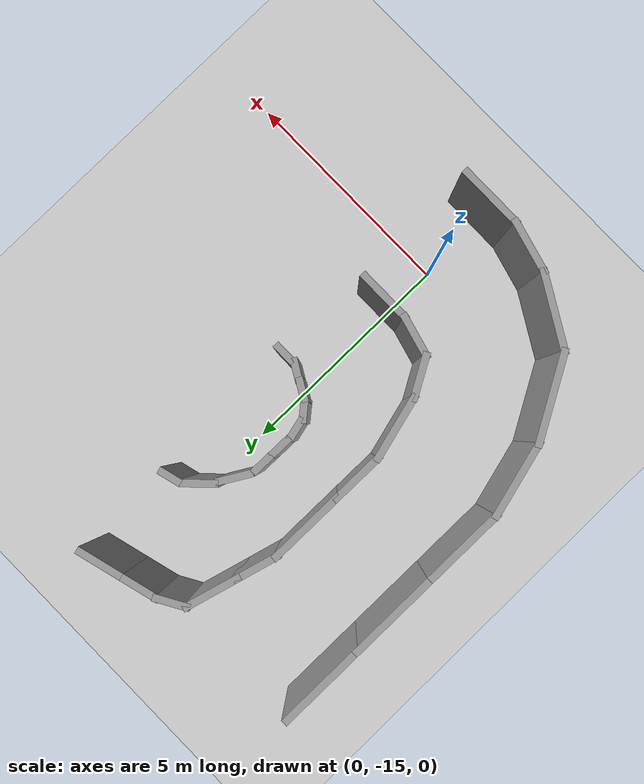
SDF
<sdf version="1.6">
 <world name="default">
  <model name="ground_plane">
   <static>1</static>
   <link name="link">
    <collision name="collision">
     <geometry><plane><normal>0 0 1</normal><size>100 100</size></plane></geometry>
     <surface><friction><ode><mu>100</mu><mu2>50</mu2></ode></friction></surface>
    </collision>
    <visual name="visual">
     <cast_shadows>0</cast_shadows>
     <geometry><plane><normal>0 0 1</normal><size>100 100</size></plane></geometry>
     <material>
      <script><uri>file://media/materials/scripts/gazebo.material</uri><name>Gazebo/Grey</name></script>
     </material>
    </visual>
   </link>
  </model>
  <model name="c-Snail_update_clone">
   <link name="Wall_29">
    <pose>10.2991 1.24294 0 0 -0 1.5708</pose>
    <visual name="Wall_29_Visual">
     <pose>0 0 1.25 0 -0 0</pose>
     <geometry><box><size>1.5 0.15 2.5</size></box></geometry>
     <material>
      <script><uri>file://media/materials/scripts/gazebo.material</uri><name>Gazebo/Grey</name></script>
      <ambient>1 1 1 1</ambient>
     </material>
     <meta><layer>0</layer></meta>
    </visual>
    <collision name="Wall_29_Collision">
     <pose>0 0 1.25 0 -0 0</pose>
     <geometry><box><size>1.5 0.15 2.5</size></box></geometry>
     <surface>
      <friction>
       <ode><mu>1</mu><mu2>1</mu2><fdir1>0 0 0</fdir1><slip1>0</slip1><slip2>0</slip2></ode>
       <torsional>
        <coefficient>1</coefficient>
        <patch_radius>0</patch_radius>
        <surface_radius>0</surface_radius>
        <use_patch_radius>1</use_patch_radius>
        <ode><slip>0</slip></ode>
       </torsional>
      </friction>
      <bounce><restitution_coefficient>0</restitution_coefficient><threshold>1e+06</threshold></bounce>
      <contact>
       <collide_without_contact>0</collide_without_contact>
       <collide_without_contact_bitmask>1</collide_without_contact_bitmask>
       <collide_bitmask>1</collide_bitmask>
       <ode>
        <soft_cfm>0</soft_cfm>
        <soft_erp>0.2</soft_erp>
        <kp>1e+13</kp>
        <kd>1</kd>
        <max_vel>0.01</max_vel>
        <min_depth>0</min_depth>
       </ode>
       <bullet>
        <split_impulse>1</split_impulse>
        <split_impulse_penetration_threshold>-0.01</split_impulse_penetration_threshold>
        <soft_cfm>0</soft_cfm>
        <soft_erp>0.2</soft_erp>
        <kp>1e+13</kp>
        <kd>1</kd>
       </bullet>
      </contact>
     </surface>
    </collision>
   </link>
   <link name="Wall_30">
    <pose>10.1568 2.4492 0 0 -0 1.8326</pose>
    <visual name="Wall_30_Visual">
     <pose>0 0 1.25 0 -0 0</pose>
     <geometry><box><size>1.25 0.15 2.5</size></box></geometry>
     <material>
      <script><uri>file://media/materials/scripts/gazebo.material</uri><name>Gazebo/Grey</name></script>
      <ambient>1 1 1 1</ambient>
     </material>
     <meta><layer>0</layer></meta>
    </visual>
    <collision name="Wall_30_Collision">
     <pose>0 0 1.25 0 -0 0</pose>
     <geometry><box><size>1.25 0.15 2.5</size></box></geometry>
     <surface>
      <friction>
       <ode><mu>1</mu><mu2>1</mu2><fdir1>0 0 0</fdir1><slip1>0</slip1><slip2>0</slip2></ode>
       <torsional>
        <coefficient>1</coefficient>
        <patch_radius>0</patch_radius>
        <surface_radius>0</surface_radius>
        <use_patch_radius>1</use_patch_radius>
        <ode><slip>0</slip></ode>
       </torsional>
      </friction>
      <bounce><restitution_coefficient>0</restitution_coefficient><threshold>1e+06</threshold></bounce>
      <contact>
       <collide_without_contact>0</collide_without_contact>
       <collide_without_contact_bitmask>1</collide_without_contact_bitmask>
       <collide_bitmask>1</collide_bitmask>
       <ode>
        <soft_cfm>0</soft_cfm>
        <soft_erp>0.2</soft_erp>
        <kp>1e+13</kp>
        <kd>1</kd>
        <max_vel>0.01</max_vel>
        <min_depth>0</min_depth>
       </ode>
       <bullet>
        <split_impulse>1</split_impulse>
        <split_impulse_penetration_threshold>-0.01</split_impulse_penetration_threshold>
        <soft_cfm>0</soft_cfm>
        <soft_erp>0.2</soft_erp>
        <kp>1e+13</kp>
        <kd>1</kd>
       </bullet>
      </contact>
     </surface>
    </collision>
   </link>
   <link name="Wall_31">
    <pose>9.61441 3.67328 0 0 -0 2.0944</pose>
    <visual name="Wall_31_Visual">
     <pose>0 0 1.25 0 -0 0</pose>
     <geometry><box><size>1.75 0.15 2.5</size></box></geometry>
     <material>
      <script><uri>file://media/materials/scripts/gazebo.material</uri><name>Gazebo/Grey</name></script>
      <ambient>1 1 1 1</ambient>
     </material>
     <meta><layer>0</layer></meta>
    </visual>
    <collision name="Wall_31_Collision">
     <pose>0 0 1.25 0 -0 0</pose>
     <geometry><box><size>1.75 0.15 2.5</size></box></geometry>
     <surface>
      <friction>
       <ode><mu>1</mu><mu2>1</mu2><fdir1>0 0 0</fdir1><slip1>0</slip1><slip2>0</slip2></ode>
       <torsional>
        <coefficient>1</coefficient>
        <patch_radius>0</patch_radius>
        <surface_radius>0</surface_radius>
        <use_patch_radius>1</use_patch_radius>
        <ode><slip>0</slip></ode>
       </torsional>
      </friction>
      <bounce><restitution_coefficient>0</restitution_coefficient><threshold>1e+06</threshold></bounce>
      <contact>
       <collide_without_contact>0</collide_without_contact>
       <collide_without_contact_bitmask>1</collide_without_contact_bitmask>
       <collide_bitmask>1</collide_bitmask>
       <ode>
        <soft_cfm>0</soft_cfm>
        <soft_erp>0.2</soft_erp>
        <kp>1e+13</kp>
        <kd>1</kd>
        <max_vel>0.01</max_vel>
        <min_depth>0</min_depth>
       </ode>
       <bullet>
        <split_impulse>1</split_impulse>
        <split_impulse_penetration_threshold>-0.01</split_impulse_penetration_threshold>
        <soft_cfm>0</soft_cfm>
        <soft_erp>0.2</soft_erp>
        <kp>1e+13</kp>
        <kd>1</kd>
       </bullet>
      </contact>
     </surface>
    </collision>
   </link>
   <link name="Wall_32">
    <pose>8.41334 4.8286 0 0 -0 2.61799</pose>
    <visual name="Wall_32_Visual">
     <pose>0 0 1.25 0 -0 0</pose>
     <geometry><box><size>2 0.15 2.5</size></box></geometry>
     <material>
      <script><uri>file://media/materials/scripts/gazebo.material</uri><name>Gazebo/Grey</name></script>
      <ambient>1 1 1 1</ambient>
     </material>
     <meta><layer>0</layer></meta>
    </visual>
    <collision name="Wall_32_Collision">
     <pose>0 0 1.25 0 -0 0</pose>
     <geometry><box><size>2 0.15 2.5</size></box></geometry>
     <surface>
      <friction>
       <ode><mu>1</mu><mu2>1</mu2><fdir1>0 0 0</fdir1><slip1>0</slip1><slip2>0</slip2></ode>
       <torsional>
        <coefficient>1</coefficient>
        <patch_radius>0</patch_radius>
        <surface_radius>0</surface_radius>
        <use_patch_radius>1</use_patch_radius>
        <ode><slip>0</slip></ode>
       </torsional>
      </friction>
      <bounce><restitution_coefficient>0</restitution_coefficient><threshold>1e+06</threshold></bounce>
      <contact>
       <collide_without_contact>0</collide_without_contact>
       <collide_without_contact_bitmask>1</collide_without_contact_bitmask>
       <collide_bitmask>1</collide_bitmask>
       <ode>
        <soft_cfm>0</soft_cfm>
        <soft_erp>0.2</soft_erp>
        <kp>1e+13</kp>
        <kd>1</kd>
        <max_vel>0.01</max_vel>
        <min_depth>0</min_depth>
       </ode>
       <bullet>
        <split_impulse>1</split_impulse>
        <split_impulse_penetration_threshold>-0.01</split_impulse_penetration_threshold>
        <soft_cfm>0</soft_cfm>
        <soft_erp>0.2</soft_erp>
        <kp>1e+13</kp>
        <kd>1</kd>
       </bullet>
      </contact>
     </surface>
    </collision>
   </link>
   <link name="Wall_33">
    <pose>6.83952 5.49815 0 0 -0 2.87979</pose>
    <visual name="Wall_33_Visual">
     <pose>0 0 1.25 0 -0 0</pose>
     <geometry><box><size>1.75 0.15 2.5</size></box></geometry>
     <material>
      <script><uri>file://media/materials/scripts/gazebo.material</uri><name>Gazebo/Grey</name></script>
      <ambient>1 1 1 1</ambient>
     </material>
     <meta><layer>0</layer></meta>
    </visual>
    <collision name="Wall_33_Collision">
     <pose>0 0 1.25 0 -0 0</pose>
     <geometry><box><size>1.75 0.15 2.5</size></box></geometry>
     <surface>
      <friction>
       <ode><mu>1</mu><mu2>1</mu2><fdir1>0 0 0</fdir1><slip1>0</slip1><slip2>0</slip2></ode>
       <torsional>
        <coefficient>1</coefficient>
        <patch_radius>0</patch_radius>
        <surface_radius>0</surface_radius>
        <use_patch_radius>1</use_patch_radius>
        <ode><slip>0</slip></ode>
       </torsional>
      </friction>
      <bounce><restitution_coefficient>0</restitution_coefficient><threshold>1e+06</threshold></bounce>
      <contact>
       <collide_without_contact>0</collide_without_contact>
       <collide_without_contact_bitmask>1</collide_without_contact_bitmask>
       <collide_bitmask>1</collide_bitmask>
       <ode>
        <soft_cfm>0</soft_cfm>
        <soft_erp>0.2</soft_erp>
        <kp>1e+13</kp>
        <kd>1</kd>
        <max_vel>0.01</max_vel>
        <min_depth>0</min_depth>
       </ode>
       <bullet>
        <split_impulse>1</split_impulse>
        <split_impulse_penetration_threshold>-0.01</split_impulse_penetration_threshold>
        <soft_cfm>0</soft_cfm>
        <soft_erp>0.2</soft_erp>
        <kp>1e+13</kp>
        <kd>1</kd>
       </bullet>
      </contact>
     </surface>
    </collision>
   </link>
   <link name="Wall_34">
    <pose>5.14178 5.70521 0 0 -0 3.14159</pose>
    <visual name="Wall_34_Visual">
     <pose>0 0 1.25 0 -0 0</pose>
     <geometry><box><size>2 0.15 2.5</size></box></geometry>
     <material>
      <script><uri>file://media/materials/scripts/gazebo.material</uri><name>Gazebo/Grey</name></script>
      <ambient>1 1 1 1</ambient>
     </material>
     <meta><layer>0</layer></meta>
    </visual>
    <collision name="Wall_34_Collision">
     <pose>0 0 1.25 0 -0 0</pose>
     <geometry><box><size>2 0.15 2.5</size></box></geometry>
     <surface>
      <friction>
       <ode><mu>1</mu><mu2>1</mu2><fdir1>0 0 0</fdir1><slip1>0</slip1><slip2>0</slip2></ode>
       <torsional>
        <coefficient>1</coefficient>
        <patch_radius>0</patch_radius>
        <surface_radius>0</surface_radius>
        <use_patch_radius>1</use_patch_radius>
        <ode><slip>0</slip></ode>
       </torsional>
      </friction>
      <bounce><restitution_coefficient>0</restitution_coefficient><threshold>1e+06</threshold></bounce>
      <contact>
       <collide_without_contact>0</collide_without_contact>
       <collide_without_contact_bitmask>1</collide_without_contact_bitmask>
       <collide_bitmask>1</collide_bitmask>
       <ode>
        <soft_cfm>0</soft_cfm>
        <soft_erp>0.2</soft_erp>
        <kp>1e+13</kp>
        <kd>1</kd>
        <max_vel>0.01</max_vel>
        <min_depth>0</min_depth>
       </ode>
       <bullet>
        <split_impulse>1</split_impulse>
        <split_impulse_penetration_threshold>-0.01</split_impulse_penetration_threshold>
        <soft_cfm>0</soft_cfm>
        <soft_erp>0.2</soft_erp>
        <kp>1e+13</kp>
        <kd>1</kd>
       </bullet>
      </contact>
     </surface>
    </collision>
   </link>
   <link name="Wall_35">
    <pose>3.29178 5.70521 0 0 -0 3.14159</pose>
    <visual name="Wall_35_Visual">
     <pose>0 0 1.25 0 -0 0</pose>
     <geometry><box><size>2 0.15 2.5</size></box></geometry>
     <material>
      <script><uri>file://media/materials/scripts/gazebo.material</uri><name>Gazebo/Grey</name></script>
      <ambient>1 1 1 1</ambient>
     </material>
     <meta><layer>0</layer></meta>
    </visual>
    <collision name="Wall_35_Collision">
     <pose>0 0 1.25 0 -0 0</pose>
     <geometry><box><size>2 0.15 2.5</size></box></geometry>
     <surface>
      <friction>
       <ode><mu>1</mu><mu2>1</mu2><fdir1>0 0 0</fdir1><slip1>0</slip1><slip2>0</slip2></ode>
       <torsional>
        <coefficient>1</coefficient>
        <patch_radius>0</patch_radius>
        <surface_radius>0</surface_radius>
        <use_patch_radius>1</use_patch_radius>
        <ode><slip>0</slip></ode>
       </torsional>
      </friction>
      <bounce><restitution_coefficient>0</restitution_coefficient><threshold>1e+06</threshold></bounce>
      <contact>
       <collide_without_contact>0</collide_without_contact>
       <collide_without_contact_bitmask>1</collide_without_contact_bitmask>
       <collide_bitmask>1</collide_bitmask>
       <ode>
        <soft_cfm>0</soft_cfm>
        <soft_erp>0.2</soft_erp>
        <kp>1e+13</kp>
        <kd>1</kd>
        <max_vel>0.01</max_vel>
        <min_depth>0</min_depth>
       </ode>
       <bullet>
        <split_impulse>1</split_impulse>
        <split_impulse_penetration_threshold>-0.01</split_impulse_penetration_threshold>
        <soft_cfm>0</soft_cfm>
        <soft_erp>0.2</soft_erp>
        <kp>1e+13</kp>
        <kd>1</kd>
       </bullet>
      </contact>
     </surface>
    </collision>
   </link>
   <link name="Wall_36">
    <pose>1.44178 5.70521 0 0 -0 3.14159</pose>
    <visual name="Wall_36_Visual">
     <pose>0 0 1.25 0 -0 0</pose>
     <geometry><box><size>2 0.15 2.5</size></box></geometry>
     <material>
      <script><uri>file://media/materials/scripts/gazebo.material</uri><name>Gazebo/Grey</name></script>
      <ambient>1 1 1 1</ambient>
     </material>
     <meta><layer>0</layer></meta>
    </visual>
    <collision name="Wall_36_Collision">
     <pose>0 0 1.25 0 -0 0</pose>
     <geometry><box><size>2 0.15 2.5</size></box></geometry>
     <surface>
      <friction>
       <ode><mu>1</mu><mu2>1</mu2><fdir1>0 0 0</fdir1><slip1>0</slip1><slip2>0</slip2></ode>
       <torsional>
        <coefficient>1</coefficient>
        <patch_radius>0</patch_radius>
        <surface_radius>0</surface_radius>
        <use_patch_radius>1</use_patch_radius>
        <ode><slip>0</slip></ode>
       </torsional>
      </friction>
      <bounce><restitution_coefficient>0</restitution_coefficient><threshold>1e+06</threshold></bounce>
      <contact>
       <collide_without_contact>0</collide_without_contact>
       <collide_without_contact_bitmask>1</collide_without_contact_bitmask>
       <collide_bitmask>1</collide_bitmask>
       <ode>
        <soft_cfm>0</soft_cfm>
        <soft_erp>0.2</soft_erp>
        <kp>1e+13</kp>
        <kd>1</kd>
        <max_vel>0.01</max_vel>
        <min_depth>0</min_depth>
       </ode>
       <bullet>
        <split_impulse>1</split_impulse>
        <split_impulse_penetration_threshold>-0.01</split_impulse_penetration_threshold>
        <soft_cfm>0</soft_cfm>
        <soft_erp>0.2</soft_erp>
        <kp>1e+13</kp>
        <kd>1</kd>
       </bullet>
      </contact>
     </surface>
    </collision>
   </link>
   <link name="Wall_56">
    <pose>7.46018 1.20021 0 0 -0 1.5708</pose>
    <visual name="Wall_56_Visual">
     <pose>0 0 1.25 0 -0 0</pose>
     <geometry><box><size>1.25 0.15 2.5</size></box></geometry>
     <material>
      <script><uri>file://media/materials/scripts/gazebo.material</uri><name>Gazebo/Grey</name></script>
      <ambient>1 1 1 1</ambient>
     </material>
     <meta><layer>0</layer></meta>
    </visual>
    <collision name="Wall_56_Collision">
     <pose>0 0 1.25 0 -0 0</pose>
     <geometry><box><size>1.25 0.15 2.5</size></box></geometry>
     <surface>
      <friction>
       <ode><mu>1</mu><mu2>1</mu2><fdir1>0 0 0</fdir1><slip1>0</slip1><slip2>0</slip2></ode>
       <torsional>
        <coefficient>1</coefficient>
        <patch_radius>0</patch_radius>
        <surface_radius>0</surface_radius>
        <use_patch_radius>1</use_patch_radius>
        <ode><slip>0</slip></ode>
       </torsional>
      </friction>
      <bounce><restitution_coefficient>0</restitution_coefficient><threshold>1e+06</threshold></bounce>
      <contact>
       <collide_without_contact>0</collide_without_contact>
       <collide_without_contact_bitmask>1</collide_without_contact_bitmask>
       <collide_bitmask>1</collide_bitmask>
       <ode>
        <soft_cfm>0</soft_cfm>
        <soft_erp>0.2</soft_erp>
        <kp>1e+13</kp>
        <kd>1</kd>
        <max_vel>0.01</max_vel>
        <min_depth>0</min_depth>
       </ode>
       <bullet>
        <split_impulse>1</split_impulse>
        <split_impulse_penetration_threshold>-0.01</split_impulse_penetration_threshold>
        <soft_cfm>0</soft_cfm>
        <soft_erp>0.2</soft_erp>
        <kp>1e+13</kp>
        <kd>1</kd>
       </bullet>
      </contact>
     </surface>
    </collision>
   </link>
   <link name="Wall_57">
    <pose>7.35018 2.16072 0 0 -0 1.8326</pose>
    <visual name="Wall_57_Visual">
     <pose>0 0 1.25 0 -0 0</pose>
     <geometry><box><size>1 0.15 2.5</size></box></geometry>
     <material>
      <script><uri>file://media/materials/scripts/gazebo.material</uri><name>Gazebo/Grey</name></script>
      <ambient>1 1 1 1</ambient>
     </material>
     <meta><layer>0</layer></meta>
    </visual>
    <collision name="Wall_57_Collision">
     <pose>0 0 1.25 0 -0 0</pose>
     <geometry><box><size>1 0.15 2.5</size></box></geometry>
     <surface>
      <friction>
       <ode><mu>1</mu><mu2>1</mu2><fdir1>0 0 0</fdir1><slip1>0</slip1><slip2>0</slip2></ode>
       <torsional>
        <coefficient>1</coefficient>
        <patch_radius>0</patch_radius>
        <surface_radius>0</surface_radius>
        <use_patch_radius>1</use_patch_radius>
        <ode><slip>0</slip></ode>
       </torsional>
      </friction>
      <bounce><restitution_coefficient>0</restitution_coefficient><threshold>1e+06</threshold></bounce>
      <contact>
       <collide_without_contact>0</collide_without_contact>
       <collide_without_contact_bitmask>1</collide_without_contact_bitmask>
       <collide_bitmask>1</collide_bitmask>
       <ode>
        <soft_cfm>0</soft_cfm>
        <soft_erp>0.2</soft_erp>
        <kp>1e+13</kp>
        <kd>1</kd>
        <max_vel>0.01</max_vel>
        <min_depth>0</min_depth>
       </ode>
       <bullet>
        <split_impulse>1</split_impulse>
        <split_impulse_penetration_threshold>-0.01</split_impulse_penetration_threshold>
        <soft_cfm>0</soft_cfm>
        <soft_erp>0.2</soft_erp>
        <kp>1e+13</kp>
        <kd>1</kd>
       </bullet>
      </contact>
     </surface>
    </collision>
   </link>
   <link name="Wall_58">
    <pose>6.87212 2.78374 0 0 -0 2.61799</pose>
    <visual name="Wall_58_Visual">
     <pose>0 0 1.25 0 -0 0</pose>
     <geometry><box><size>1 0.15 2.5</size></box></geometry>
     <material>
      <script><uri>file://media/materials/scripts/gazebo.material</uri><name>Gazebo/Grey</name></script>
      <ambient>1 1 1 1</ambient>
     </material>
     <meta><layer>0</layer></meta>
    </visual>
    <collision name="Wall_58_Collision">
     <pose>0 0 1.25 0 -0 0</pose>
     <geometry><box><size>1 0.15 2.5</size></box></geometry>
     <surface>
      <friction>
       <ode><mu>1</mu><mu2>1</mu2><fdir1>0 0 0</fdir1><slip1>0</slip1><slip2>0</slip2></ode>
       <torsional>
        <coefficient>1</coefficient>
        <patch_radius>0</patch_radius>
        <surface_radius>0</surface_radius>
        <use_patch_radius>1</use_patch_radius>
        <ode><slip>0</slip></ode>
       </torsional>
      </friction>
      <bounce><restitution_coefficient>0</restitution_coefficient><threshold>1e+06</threshold></bounce>
      <contact>
       <collide_without_contact>0</collide_without_contact>
       <collide_without_contact_bitmask>1</collide_without_contact_bitmask>
       <collide_bitmask>1</collide_bitmask>
       <ode>
        <soft_cfm>0</soft_cfm>
        <soft_erp>0.2</soft_erp>
        <kp>1e+13</kp>
        <kd>1</kd>
        <max_vel>0.01</max_vel>
        <min_depth>0</min_depth>
       </ode>
       <bullet>
        <split_impulse>1</split_impulse>
        <split_impulse_penetration_threshold>-0.01</split_impulse_penetration_threshold>
        <soft_cfm>0</soft_cfm>
        <soft_erp>0.2</soft_erp>
        <kp>1e+13</kp>
        <kd>1</kd>
       </bullet>
      </contact>
     </surface>
    </collision>
   </link>
   <link name="Wall_59">
    <pose>5.85206 3.17095 0 0 -0 2.87979</pose>
    <visual name="Wall_59_Visual">
     <pose>0 0 1.25 0 -0 0</pose>
     <geometry><box><size>1.5 0.15 2.5</size></box></geometry>
     <material>
      <script><uri>file://media/materials/scripts/gazebo.material</uri><name>Gazebo/Grey</name></script>
      <ambient>1 1 1 1</ambient>
     </material>
     <meta><layer>0</layer></meta>
    </visual>
    <collision name="Wall_59_Collision">
     <pose>0 0 1.25 0 -0 0</pose>
     <geometry><box><size>1.5 0.15 2.5</size></box></geometry>
     <surface>
      <friction>
       <ode><mu>1</mu><mu2>1</mu2><fdir1>0 0 0</fdir1><slip1>0</slip1><slip2>0</slip2></ode>
       <torsional>
        <coefficient>1</coefficient>
        <patch_radius>0</patch_radius>
        <surface_radius>0</surface_radius>
        <use_patch_radius>1</use_patch_radius>
        <ode><slip>0</slip></ode>
       </torsional>
      </friction>
      <bounce><restitution_coefficient>0</restitution_coefficient><threshold>1e+06</threshold></bounce>
      <contact>
       <collide_without_contact>0</collide_without_contact>
       <collide_without_contact_bitmask>1</collide_without_contact_bitmask>
       <collide_bitmask>1</collide_bitmask>
       <ode>
        <soft_cfm>0</soft_cfm>
        <soft_erp>0.2</soft_erp>
        <kp>1e+13</kp>
        <kd>1</kd>
        <max_vel>0.01</max_vel>
        <min_depth>0</min_depth>
       </ode>
       <bullet>
        <split_impulse>1</split_impulse>
        <split_impulse_penetration_threshold>-0.01</split_impulse_penetration_threshold>
        <soft_cfm>0</soft_cfm>
        <soft_erp>0.2</soft_erp>
        <kp>1e+13</kp>
        <kd>1</kd>
       </bullet>
      </contact>
     </surface>
    </collision>
   </link>
   <link name="Wall_60">
    <pose>4.65006 3.34565 0 0 -0 3.14159</pose>
    <visual name="Wall_60_Visual">
     <pose>0 0 1.25 0 -0 0</pose>
     <geometry><box><size>1.25 0.15 2.5</size></box></geometry>
     <material>
      <script><uri>file://media/materials/scripts/gazebo.material</uri><name>Gazebo/Grey</name></script>
      <ambient>1 1 1 1</ambient>
     </material>
     <meta><layer>0</layer></meta>
    </visual>
    <collision name="Wall_60_Collision">
     <pose>0 0 1.25 0 -0 0</pose>
     <geometry><box><size>1.25 0.15 2.5</size></box></geometry>
     <surface>
      <friction>
       <ode><mu>1</mu><mu2>1</mu2><fdir1>0 0 0</fdir1><slip1>0</slip1><slip2>0</slip2></ode>
       <torsional>
        <coefficient>1</coefficient>
        <patch_radius>0</patch_radius>
        <surface_radius>0</surface_radius>
        <use_patch_radius>1</use_patch_radius>
        <ode><slip>0</slip></ode>
       </torsional>
      </friction>
      <bounce><restitution_coefficient>0</restitution_coefficient><threshold>1e+06</threshold></bounce>
      <contact>
       <collide_without_contact>0</collide_without_contact>
       <collide_without_contact_bitmask>1</collide_without_contact_bitmask>
       <collide_bitmask>1</collide_bitmask>
       <ode>
        <soft_cfm>0</soft_cfm>
        <soft_erp>0.2</soft_erp>
        <kp>1e+13</kp>
        <kd>1</kd>
        <max_vel>0.01</max_vel>
        <min_depth>0</min_depth>
       </ode>
       <bullet>
        <split_impulse>1</split_impulse>
        <split_impulse_penetration_threshold>-0.01</split_impulse_penetration_threshold>
        <soft_cfm>0</soft_cfm>
        <soft_erp>0.2</soft_erp>
        <kp>1e+13</kp>
        <kd>1</kd>
       </bullet>
      </contact>
     </surface>
    </collision>
   </link>
   <link name="Wall_61">
    <pose>3.30006 3.34565 0 0 -0 3.14159</pose>
    <visual name="Wall_61_Visual">
     <pose>0 0 1.25 0 -0 0</pose>
     <geometry><box><size>1.75 0.15 2.5</size></box></geometry>
     <material>
      <script><uri>file://media/materials/scripts/gazebo.material</uri><name>Gazebo/Grey</name></script>
      <ambient>1 1 1 1</ambient>
     </material>
     <meta><layer>0</layer></meta>
    </visual>
    <collision name="Wall_61_Collision">
     <pose>0 0 1.25 0 -0 0</pose>
     <geometry><box><size>1.75 0.15 2.5</size></box></geometry>
     <surface>
      <friction>
       <ode><mu>1</mu><mu2>1</mu2><fdir1>0 0 0</fdir1><slip1>0</slip1><slip2>0</slip2></ode>
       <torsional>
        <coefficient>1</coefficient>
        <patch_radius>0</patch_radius>
        <surface_radius>0</surface_radius>
        <use_patch_radius>1</use_patch_radius>
        <ode><slip>0</slip></ode>
       </torsional>
      </friction>
      <bounce><restitution_coefficient>0</restitution_coefficient><threshold>1e+06</threshold></bounce>
      <contact>
       <collide_without_contact>0</collide_without_contact>
       <collide_without_contact_bitmask>1</collide_without_contact_bitmask>
       <collide_bitmask>1</collide_bitmask>
       <ode>
        <soft_cfm>0</soft_cfm>
        <soft_erp>0.2</soft_erp>
        <kp>1e+13</kp>
        <kd>1</kd>
        <max_vel>0.01</max_vel>
        <min_depth>0</min_depth>
       </ode>
       <bullet>
        <split_impulse>1</split_impulse>
        <split_impulse_penetration_threshold>-0.01</split_impulse_penetration_threshold>
        <soft_cfm>0</soft_cfm>
        <soft_erp>0.2</soft_erp>
        <kp>1e+13</kp>
        <kd>1</kd>
       </bullet>
      </contact>
     </surface>
    </collision>
   </link>
   <link name="Wall_62">
    <pose>2.08954 3.23565 0 0 0 -2.87979</pose>
    <visual name="Wall_62_Visual">
     <pose>0 0 1.25 0 -0 0</pose>
     <geometry><box><size>1 0.15 2.5</size></box></geometry>
     <material>
      <script><uri>file://media/materials/scripts/gazebo.material</uri><name>Gazebo/Grey</name></script>
      <ambient>1 1 1 1</ambient>
     </material>
     <meta><layer>0</layer></meta>
    </visual>
    <collision name="Wall_62_Collision">
     <pose>0 0 1.25 0 -0 0</pose>
     <geometry><box><size>1 0.15 2.5</size></box></geometry>
     <surface>
      <friction>
       <ode><mu>1</mu><mu2>1</mu2><fdir1>0 0 0</fdir1><slip1>0</slip1><slip2>0</slip2></ode>
       <torsional>
        <coefficient>1</coefficient>
        <patch_radius>0</patch_radius>
        <surface_radius>0</surface_radius>
        <use_patch_radius>1</use_patch_radius>
        <ode><slip>0</slip></ode>
       </torsional>
      </friction>
      <bounce><restitution_coefficient>0</restitution_coefficient><threshold>1e+06</threshold></bounce>
      <contact>
       <collide_without_contact>0</collide_without_contact>
       <collide_without_contact_bitmask>1</collide_without_contact_bitmask>
       <collide_bitmask>1</collide_bitmask>
       <ode>
        <soft_cfm>0</soft_cfm>
        <soft_erp>0.2</soft_erp>
        <kp>1e+13</kp>
        <kd>1</kd>
        <max_vel>0.01</max_vel>
        <min_depth>0</min_depth>
       </ode>
       <bullet>
        <split_impulse>1</split_impulse>
        <split_impulse_penetration_threshold>-0.01</split_impulse_penetration_threshold>
        <soft_cfm>0</soft_cfm>
        <soft_erp>0.2</soft_erp>
        <kp>1e+13</kp>
        <kd>1</kd>
       </bullet>
      </contact>
     </surface>
    </collision>
   </link>
   <link name="Wall_63">
    <pose>1.14777 2.9833 0 0 0 -2.87979</pose>
    <visual name="Wall_63_Visual">
     <pose>0 0 1.25 0 -0 0</pose>
     <geometry><box><size>1.25 0.15 2.5</size></box></geometry>
     <material>
      <script><uri>file://media/materials/scripts/gazebo.material</uri><name>Gazebo/Grey</name></script>
      <ambient>1 1 1 1</ambient>
     </material>
     <meta><layer>0</layer></meta>
    </visual>
    <collision name="Wall_63_Collision">
     <pose>0 0 1.25 0 -0 0</pose>
     <geometry><box><size>1.25 0.15 2.5</size></box></geometry>
     <surface>
      <friction>
       <ode><mu>1</mu><mu2>1</mu2><fdir1>0 0 0</fdir1><slip1>0</slip1><slip2>0</slip2></ode>
       <torsional>
        <coefficient>1</coefficient>
        <patch_radius>0</patch_radius>
        <surface_radius>0</surface_radius>
        <use_patch_radius>1</use_patch_radius>
        <ode><slip>0</slip></ode>
       </torsional>
      </friction>
      <bounce><restitution_coefficient>0</restitution_coefficient><threshold>1e+06</threshold></bounce>
      <contact>
       <collide_without_contact>0</collide_without_contact>
       <collide_without_contact_bitmask>1</collide_without_contact_bitmask>
       <collide_bitmask>1</collide_bitmask>
       <ode>
        <soft_cfm>0</soft_cfm>
        <soft_erp>0.2</soft_erp>
        <kp>1e+13</kp>
        <kd>1</kd>
        <max_vel>0.01</max_vel>
        <min_depth>0</min_depth>
       </ode>
       <bullet>
        <split_impulse>1</split_impulse>
        <split_impulse_penetration_threshold>-0.01</split_impulse_penetration_threshold>
        <soft_cfm>0</soft_cfm>
        <soft_erp>0.2</soft_erp>
        <kp>1e+13</kp>
        <kd>1</kd>
       </bullet>
      </contact>
     </surface>
    </collision>
   </link>
   <link name="Wall_64">
    <pose>0.466507 2.58114 0 0 0 -2.0944</pose>
    <visual name="Wall_64_Visual">
     <pose>0 0 1.25 0 -0 0</pose>
     <geometry><box><size>0.75 0.15 2.5</size></box></geometry>
     <material>
      <script><uri>file://media/materials/scripts/gazebo.material</uri><name>Gazebo/Grey</name></script>
      <ambient>1 1 1 1</ambient>
     </material>
     <meta><layer>0</layer></meta>
    </visual>
    <collision name="Wall_64_Collision">
     <pose>0 0 1.25 0 -0 0</pose>
     <geometry><box><size>0.75 0.15 2.5</size></box></geometry>
     <surface>
      <friction>
       <ode><mu>1</mu><mu2>1</mu2><fdir1>0 0 0</fdir1><slip1>0</slip1><slip2>0</slip2></ode>
       <torsional>
        <coefficient>1</coefficient>
        <patch_radius>0</patch_radius>
        <surface_radius>0</surface_radius>
        <use_patch_radius>1</use_patch_radius>
        <ode><slip>0</slip></ode>
       </torsional>
      </friction>
      <bounce><restitution_coefficient>0</restitution_coefficient><threshold>1e+06</threshold></bounce>
      <contact>
       <collide_without_contact>0</collide_without_contact>
       <collide_without_contact_bitmask>1</collide_without_contact_bitmask>
       <collide_bitmask>1</collide_bitmask>
       <ode>
        <soft_cfm>0</soft_cfm>
        <soft_erp>0.2</soft_erp>
        <kp>1e+13</kp>
        <kd>1</kd>
        <max_vel>0.01</max_vel>
        <min_depth>0</min_depth>
       </ode>
       <bullet>
        <split_impulse>1</split_impulse>
        <split_impulse_penetration_threshold>-0.01</split_impulse_penetration_threshold>
        <soft_cfm>0</soft_cfm>
        <soft_erp>0.2</soft_erp>
        <kp>1e+13</kp>
        <kd>1</kd>
       </bullet>
      </contact>
     </surface>
    </collision>
   </link>
   <link name="Wall_65">
    <pose>0.206509 1.91082 0 0 0 -1.8326</pose>
    <visual name="Wall_65_Visual">
     <pose>0 0 1.25 0 -0 0</pose>
     <geometry><box><size>1 0.15 2.5</size></box></geometry>
     <material>
      <script><uri>file://media/materials/scripts/gazebo.material</uri><name>Gazebo/Grey</name></script>
      <ambient>1 1 1 1</ambient>
     </material>
     <meta><layer>0</layer></meta>
    </visual>
    <collision name="Wall_65_Collision">
     <pose>0 0 1.25 0 -0 0</pose>
     <geometry><box><size>1 0.15 2.5</size></box></geometry>
     <surface>
      <friction>
       <ode><mu>1</mu><mu2>1</mu2><fdir1>0 0 0</fdir1><slip1>0</slip1><slip2>0</slip2></ode>
       <torsional>
        <coefficient>1</coefficient>
        <patch_radius>0</patch_radius>
        <surface_radius>0</surface_radius>
        <use_patch_radius>1</use_patch_radius>
        <ode><slip>0</slip></ode>
       </torsional>
      </friction>
      <bounce><restitution_coefficient>0</restitution_coefficient><threshold>1e+06</threshold></bounce>
      <contact>
       <collide_without_contact>0</collide_without_contact>
       <collide_without_contact_bitmask>1</collide_without_contact_bitmask>
       <collide_bitmask>1</collide_bitmask>
       <ode>
        <soft_cfm>0</soft_cfm>
        <soft_erp>0.2</soft_erp>
        <kp>1e+13</kp>
        <kd>1</kd>
        <max_vel>0.01</max_vel>
        <min_depth>0</min_depth>
       </ode>
       <bullet>
        <split_impulse>1</split_impulse>
        <split_impulse_penetration_threshold>-0.01</split_impulse_penetration_threshold>
        <soft_cfm>0</soft_cfm>
        <soft_erp>0.2</soft_erp>
        <kp>1e+13</kp>
        <kd>1</kd>
       </bullet>
      </contact>
     </surface>
    </collision>
   </link>
   <link name="Wall_66">
    <pose>-0.013487 1.08978 0 0 0 -1.8326</pose>
    <visual name="Wall_66_Visual">
     <pose>0 0 1.25 0 -0 0</pose>
     <geometry><box><size>1 0.15 2.5</size></box></geometry>
     <material>
      <script><uri>file://media/materials/scripts/gazebo.material</uri><name>Gazebo/Grey</name></script>
      <ambient>1 1 1 1</ambient>
     </material>
     <meta><layer>0</layer></meta>
    </visual>
    <collision name="Wall_66_Collision">
     <pose>0 0 1.25 0 -0 0</pose>
     <geometry><box><size>1 0.15 2.5</size></box></geometry>
     <surface>
      <friction>
       <ode><mu>1</mu><mu2>1</mu2><fdir1>0 0 0</fdir1><slip1>0</slip1><slip2>0</slip2></ode>
       <torsional>
        <coefficient>1</coefficient>
        <patch_radius>0</patch_radius>
        <surface_radius>0</surface_radius>
        <use_patch_radius>1</use_patch_radius>
        <ode><slip>0</slip></ode>
       </torsional>
      </friction>
      <bounce><restitution_coefficient>0</restitution_coefficient><threshold>1e+06</threshold></bounce>
      <contact>
       <collide_without_contact>0</collide_without_contact>
       <collide_without_contact_bitmask>1</collide_without_contact_bitmask>
       <collide_bitmask>1</collide_bitmask>
       <ode>
        <soft_cfm>0</soft_cfm>
        <soft_erp>0.2</soft_erp>
        <kp>1e+13</kp>
        <kd>1</kd>
        <max_vel>0.01</max_vel>
        <min_depth>0</min_depth>
       </ode>
       <bullet>
        <split_impulse>1</split_impulse>
        <split_impulse_penetration_threshold>-0.01</split_impulse_penetration_threshold>
        <soft_cfm>0</soft_cfm>
        <soft_erp>0.2</soft_erp>
        <kp>1e+13</kp>
        <kd>1</kd>
       </bullet>
      </contact>
     </surface>
    </collision>
   </link>
   <link name="Wall_78">
    <pose>5.30515 0.648382 0 0 -0 1.5708</pose>
    <visual name="Wall_78_Visual">
     <pose>0 0 1.25 0 -0 0</pose>
     <geometry><box><size>0.5 0.15 2.5</size></box></geometry>
     <material>
      <script><uri>file://media/materials/scripts/gazebo.material</uri><name>Gazebo/Grey</name></script>
      <ambient>1 1 1 1</ambient>
     </material>
     <meta><layer>0</layer></meta>
    </visual>
    <collision name="Wall_78_Collision">
     <pose>0 0 1.25 0 -0 0</pose>
     <geometry><box><size>0.5 0.15 2.5</size></box></geometry>
     <surface>
      <friction>
       <ode><mu>1</mu><mu2>1</mu2><fdir1>0 0 0</fdir1><slip1>0</slip1><slip2>0</slip2></ode>
       <torsional>
        <coefficient>1</coefficient>
        <patch_radius>0</patch_radius>
        <surface_radius>0</surface_radius>
        <use_patch_radius>1</use_patch_radius>
        <ode><slip>0</slip></ode>
       </torsional>
      </friction>
      <bounce><restitution_coefficient>0</restitution_coefficient><threshold>1e+06</threshold></bounce>
      <contact>
       <collide_without_contact>0</collide_without_contact>
       <collide_without_contact_bitmask>1</collide_without_contact_bitmask>
       <collide_bitmask>1</collide_bitmask>
       <ode>
        <soft_cfm>0</soft_cfm>
        <soft_erp>0.2</soft_erp>
        <kp>1e+13</kp>
        <kd>1</kd>
        <max_vel>0.01</max_vel>
        <min_depth>0</min_depth>
       </ode>
       <bullet>
        <split_impulse>1</split_impulse>
        <split_impulse_penetration_threshold>-0.01</split_impulse_penetration_threshold>
        <soft_cfm>0</soft_cfm>
        <soft_erp>0.2</soft_erp>
        <kp>1e+13</kp>
        <kd>1</kd>
       </bullet>
      </contact>
     </surface>
    </collision>
   </link>
   <link name="Wall_79">
    <pose>5.24565 1.04184 0 0 -0 2.0944</pose>
    <visual name="Wall_79_Visual">
     <pose>0 0 1.25 0 -0 0</pose>
     <geometry><box><size>0.5 0.15 2.5</size></box></geometry>
     <material>
      <script><uri>file://media/materials/scripts/gazebo.material</uri><name>Gazebo/Grey</name></script>
      <ambient>1 1 1 1</ambient>
     </material>
     <meta><layer>0</layer></meta>
    </visual>
    <collision name="Wall_79_Collision">
     <pose>0 0 1.25 0 -0 0</pose>
     <geometry><box><size>0.5 0.15 2.5</size></box></geometry>
     <surface>
      <friction>
       <ode><mu>1</mu><mu2>1</mu2><fdir1>0 0 0</fdir1><slip1>0</slip1><slip2>0</slip2></ode>
       <torsional>
        <coefficient>1</coefficient>
        <patch_radius>0</patch_radius>
        <surface_radius>0</surface_radius>
        <use_patch_radius>1</use_patch_radius>
        <ode><slip>0</slip></ode>
       </torsional>
      </friction>
      <bounce><restitution_coefficient>0</restitution_coefficient><threshold>1e+06</threshold></bounce>
      <contact>
       <collide_without_contact>0</collide_without_contact>
       <collide_without_contact_bitmask>1</collide_without_contact_bitmask>
       <collide_bitmask>1</collide_bitmask>
       <ode>
        <soft_cfm>0</soft_cfm>
        <soft_erp>0.2</soft_erp>
        <kp>1e+13</kp>
        <kd>1</kd>
        <max_vel>0.01</max_vel>
        <min_depth>0</min_depth>
       </ode>
       <bullet>
        <split_impulse>1</split_impulse>
        <split_impulse_penetration_threshold>-0.01</split_impulse_penetration_threshold>
        <soft_cfm>0</soft_cfm>
        <soft_erp>0.2</soft_erp>
        <kp>1e+13</kp>
        <kd>1</kd>
       </bullet>
      </contact>
     </surface>
    </collision>
   </link>
   <link name="Wall_80">
    <pose>5.06173 1.38578 0 0 -0 2.0944</pose>
    <visual name="Wall_80_Visual">
     <pose>0 0 1.25 0 -0 0</pose>
     <geometry><box><size>0.5 0.15 2.5</size></box></geometry>
     <material>
      <script><uri>file://media/materials/scripts/gazebo.material</uri><name>Gazebo/Grey</name></script>
      <ambient>1 1 1 1</ambient>
     </material>
     <meta><layer>0</layer></meta>
    </visual>
    <collision name="Wall_80_Collision">
     <pose>0 0 1.25 0 -0 0</pose>
     <geometry><box><size>0.5 0.15 2.5</size></box></geometry>
     <surface>
      <friction>
       <ode><mu>1</mu><mu2>1</mu2><fdir1>0 0 0</fdir1><slip1>0</slip1><slip2>0</slip2></ode>
       <torsional>
        <coefficient>1</coefficient>
        <patch_radius>0</patch_radius>
        <surface_radius>0</surface_radius>
        <use_patch_radius>1</use_patch_radius>
        <ode><slip>0</slip></ode>
       </torsional>
      </friction>
      <bounce><restitution_coefficient>0</restitution_coefficient><threshold>1e+06</threshold></bounce>
      <contact>
       <collide_without_contact>0</collide_without_contact>
       <collide_without_contact_bitmask>1</collide_without_contact_bitmask>
       <collide_bitmask>1</collide_bitmask>
       <ode>
        <soft_cfm>0</soft_cfm>
        <soft_erp>0.2</soft_erp>
        <kp>1e+13</kp>
        <kd>1</kd>
        <max_vel>0.01</max_vel>
        <min_depth>0</min_depth>
       </ode>
       <bullet>
        <split_impulse>1</split_impulse>
        <split_impulse_penetration_threshold>-0.01</split_impulse_penetration_threshold>
        <soft_cfm>0</soft_cfm>
        <soft_erp>0.2</soft_erp>
        <kp>1e+13</kp>
        <kd>1</kd>
       </bullet>
      </contact>
     </surface>
    </collision>
   </link>
   <link name="Wall_81">
    <pose>4.80922 1.69585 0 0 -0 2.43746</pose>
    <visual name="Wall_81_Visual">
     <pose>0 0 1.25 0 -0 0</pose>
     <geometry><box><size>0.5 0.15 2.5</size></box></geometry>
     <material>
      <script><uri>file://media/materials/scripts/gazebo.material</uri><name>Gazebo/Grey</name></script>
      <ambient>1 1 1 1</ambient>
     </material>
     <meta><layer>0</layer></meta>
    </visual>
    <collision name="Wall_81_Collision">
     <pose>0 0 1.25 0 -0 0</pose>
     <geometry><box><size>0.5 0.15 2.5</size></box></geometry>
     <surface>
      <friction>
       <ode><mu>1</mu><mu2>1</mu2><fdir1>0 0 0</fdir1><slip1>0</slip1><slip2>0</slip2></ode>
       <torsional>
        <coefficient>1</coefficient>
        <patch_radius>0</patch_radius>
        <surface_radius>0</surface_radius>
        <use_patch_radius>1</use_patch_radius>
        <ode><slip>0</slip></ode>
       </torsional>
      </friction>
      <bounce><restitution_coefficient>0</restitution_coefficient><threshold>1e+06</threshold></bounce>
      <contact>
       <collide_without_contact>0</collide_without_contact>
       <collide_without_contact_bitmask>1</collide_without_contact_bitmask>
       <collide_bitmask>1</collide_bitmask>
       <ode>
        <soft_cfm>0</soft_cfm>
        <soft_erp>0.2</soft_erp>
        <kp>1e+13</kp>
        <kd>1</kd>
        <max_vel>0.01</max_vel>
        <min_depth>0</min_depth>
       </ode>
       <bullet>
        <split_impulse>1</split_impulse>
        <split_impulse_penetration_threshold>-0.01</split_impulse_penetration_threshold>
        <soft_cfm>0</soft_cfm>
        <soft_erp>0.2</soft_erp>
        <kp>1e+13</kp>
        <kd>1</kd>
       </bullet>
      </contact>
     </surface>
    </collision>
   </link>
   <link name="Wall_82">
    <pose>4.45763 1.85252 0 0 -0 2.89252</pose>
    <visual name="Wall_82_Visual">
     <pose>0 0 1.25 0 -0 0</pose>
     <geometry><box><size>0.5 0.15 2.5</size></box></geometry>
     <material>
      <script><uri>file://media/materials/scripts/gazebo.material</uri><name>Gazebo/Grey</name></script>
      <ambient>1 1 1 1</ambient>
     </material>
     <meta><layer>0</layer></meta>
    </visual>
    <collision name="Wall_82_Collision">
     <pose>0 0 1.25 0 -0 0</pose>
     <geometry><box><size>0.5 0.15 2.5</size></box></geometry>
     <surface>
      <friction>
       <ode><mu>1</mu><mu2>1</mu2><fdir1>0 0 0</fdir1><slip1>0</slip1><slip2>0</slip2></ode>
       <torsional>
        <coefficient>1</coefficient>
        <patch_radius>0</patch_radius>
        <surface_radius>0</surface_radius>
        <use_patch_radius>1</use_patch_radius>
        <ode><slip>0</slip></ode>
       </torsional>
      </friction>
      <bounce><restitution_coefficient>0</restitution_coefficient><threshold>1e+06</threshold></bounce>
      <contact>
       <collide_without_contact>0</collide_without_contact>
       <collide_without_contact_bitmask>1</collide_without_contact_bitmask>
       <collide_bitmask>1</collide_bitmask>
       <ode>
        <soft_cfm>0</soft_cfm>
        <soft_erp>0.2</soft_erp>
        <kp>1e+13</kp>
        <kd>1</kd>
        <max_vel>0.01</max_vel>
        <min_depth>0</min_depth>
       </ode>
       <bullet>
        <split_impulse>1</split_impulse>
        <split_impulse_penetration_threshold>-0.01</split_impulse_penetration_threshold>
        <soft_cfm>0</soft_cfm>
        <soft_erp>0.2</soft_erp>
        <kp>1e+13</kp>
        <kd>1</kd>
       </bullet>
      </contact>
     </surface>
    </collision>
   </link>
   <link name="Wall_83">
    <pose>4.00303 1.88865 0 0 -0 3.14159</pose>
    <visual name="Wall_83_Visual">
     <pose>0 0 1.25 0 -0 0</pose>
     <geometry><box><size>0.5 0.15 2.5</size></box></geometry>
     <material>
      <script><uri>file://media/materials/scripts/gazebo.material</uri><name>Gazebo/Grey</name></script>
      <ambient>1 1 1 1</ambient>
     </material>
     <meta><layer>0</layer></meta>
    </visual>
    <collision name="Wall_83_Collision">
     <pose>0 0 1.25 0 -0 0</pose>
     <geometry><box><size>0.5 0.15 2.5</size></box></geometry>
     <surface>
      <friction>
       <ode><mu>1</mu><mu2>1</mu2><fdir1>0 0 0</fdir1><slip1>0</slip1><slip2>0</slip2></ode>
       <torsional>
        <coefficient>1</coefficient>
        <patch_radius>0</patch_radius>
        <surface_radius>0</surface_radius>
        <use_patch_radius>1</use_patch_radius>
        <ode><slip>0</slip></ode>
       </torsional>
      </friction>
      <bounce><restitution_coefficient>0</restitution_coefficient><threshold>1e+06</threshold></bounce>
      <contact>
       <collide_without_contact>0</collide_without_contact>
       <collide_without_contact_bitmask>1</collide_without_contact_bitmask>
       <collide_bitmask>1</collide_bitmask>
       <ode>
        <soft_cfm>0</soft_cfm>
        <soft_erp>0.2</soft_erp>
        <kp>1e+13</kp>
        <kd>1</kd>
        <max_vel>0.01</max_vel>
        <min_depth>0</min_depth>
       </ode>
       <bullet>
        <split_impulse>1</split_impulse>
        <split_impulse_penetration_threshold>-0.01</split_impulse_penetration_threshold>
        <soft_cfm>0</soft_cfm>
        <soft_erp>0.2</soft_erp>
        <kp>1e+13</kp>
        <kd>1</kd>
       </bullet>
      </contact>
     </surface>
    </collision>
   </link>
   <link name="Wall_84">
    <pose>3.52832 1.88552 0 0 -0 3.14159</pose>
    <visual name="Wall_84_Visual">
     <pose>0 0 1.25 0 -0 0</pose>
     <geometry><box><size>0.5 0.15 2.5</size></box></geometry>
     <material>
      <script><uri>file://media/materials/scripts/gazebo.material</uri><name>Gazebo/Grey</name></script>
      <ambient>1 1 1 1</ambient>
     </material>
     <meta><layer>0</layer></meta>
    </visual>
    <collision name="Wall_84_Collision">
     <pose>0 0 1.25 0 -0 0</pose>
     <geometry><box><size>0.5 0.15 2.5</size></box></geometry>
     <surface>
      <friction>
       <ode><mu>1</mu><mu2>1</mu2><fdir1>0 0 0</fdir1><slip1>0</slip1><slip2>0</slip2></ode>
       <torsional>
        <coefficient>1</coefficient>
        <patch_radius>0</patch_radius>
        <surface_radius>0</surface_radius>
        <use_patch_radius>1</use_patch_radius>
        <ode><slip>0</slip></ode>
       </torsional>
      </friction>
      <bounce><restitution_coefficient>0</restitution_coefficient><threshold>1e+06</threshold></bounce>
      <contact>
       <collide_without_contact>0</collide_without_contact>
       <collide_without_contact_bitmask>1</collide_without_contact_bitmask>
       <collide_bitmask>1</collide_bitmask>
       <ode>
        <soft_cfm>0</soft_cfm>
        <soft_erp>0.2</soft_erp>
        <kp>1e+13</kp>
        <kd>1</kd>
        <max_vel>0.01</max_vel>
        <min_depth>0</min_depth>
       </ode>
       <bullet>
        <split_impulse>1</split_impulse>
        <split_impulse_penetration_threshold>-0.01</split_impulse_penetration_threshold>
        <soft_cfm>0</soft_cfm>
        <soft_erp>0.2</soft_erp>
        <kp>1e+13</kp>
        <kd>1</kd>
       </bullet>
      </contact>
     </surface>
    </collision>
   </link>
   <link name="Wall_85">
    <pose>2.96676 1.70222 0 0 0 -2.61799</pose>
    <visual name="Wall_85_Visual">
     <pose>0 0 1.25 0 -0 0</pose>
     <geometry><box><size>0.75 0.15 2.5</size></box></geometry>
     <material>
      <script><uri>file://media/materials/scripts/gazebo.material</uri><name>Gazebo/Grey</name></script>
      <ambient>1 1 1 1</ambient>
     </material>
     <meta><layer>0</layer></meta>
    </visual>
    <collision name="Wall_85_Collision">
     <pose>0 0 1.25 0 -0 0</pose>
     <geometry><box><size>0.75 0.15 2.5</size></box></geometry>
     <surface>
      <friction>
       <ode><mu>1</mu><mu2>1</mu2><fdir1>0 0 0</fdir1><slip1>0</slip1><slip2>0</slip2></ode>
       <torsional>
        <coefficient>1</coefficient>
        <patch_radius>0</patch_radius>
        <surface_radius>0</surface_radius>
        <use_patch_radius>1</use_patch_radius>
        <ode><slip>0</slip></ode>
       </torsional>
      </friction>
      <bounce><restitution_coefficient>0</restitution_coefficient><threshold>1e+06</threshold></bounce>
      <contact>
       <collide_without_contact>0</collide_without_contact>
       <collide_without_contact_bitmask>1</collide_without_contact_bitmask>
       <collide_bitmask>1</collide_bitmask>
       <ode>
        <soft_cfm>0</soft_cfm>
        <soft_erp>0.2</soft_erp>
        <kp>1e+13</kp>
        <kd>1</kd>
        <max_vel>0.01</max_vel>
        <min_depth>0</min_depth>
       </ode>
       <bullet>
        <split_impulse>1</split_impulse>
        <split_impulse_penetration_threshold>-0.01</split_impulse_penetration_threshold>
        <soft_cfm>0</soft_cfm>
        <soft_erp>0.2</soft_erp>
        <kp>1e+13</kp>
        <kd>1</kd>
       </bullet>
      </contact>
     </surface>
    </collision>
   </link>
   <link name="Wall_86">
    <pose>2.40161 1.31085 0 0 0 -2.35619</pose>
    <visual name="Wall_86_Visual">
     <pose>0 0 1.25 0 -0 0</pose>
     <geometry><box><size>0.75 0.15 2.5</size></box></geometry>
     <material>
      <script><uri>file://media/materials/scripts/gazebo.material</uri><name>Gazebo/Grey</name></script>
      <ambient>1 1 1 1</ambient>
     </material>
     <meta><layer>0</layer></meta>
    </visual>
    <collision name="Wall_86_Collision">
     <pose>0 0 1.25 0 -0 0</pose>
     <geometry><box><size>0.75 0.15 2.5</size></box></geometry>
     <surface>
      <friction>
       <ode><mu>1</mu><mu2>1</mu2><fdir1>0 0 0</fdir1><slip1>0</slip1><slip2>0</slip2></ode>
       <torsional>
        <coefficient>1</coefficient>
        <patch_radius>0</patch_radius>
        <surface_radius>0</surface_radius>
        <use_patch_radius>1</use_patch_radius>
        <ode><slip>0</slip></ode>
       </torsional>
      </friction>
      <bounce><restitution_coefficient>0</restitution_coefficient><threshold>1e+06</threshold></bounce>
      <contact>
       <collide_without_contact>0</collide_without_contact>
       <collide_without_contact_bitmask>1</collide_without_contact_bitmask>
       <collide_bitmask>1</collide_bitmask>
       <ode>
        <soft_cfm>0</soft_cfm>
        <soft_erp>0.2</soft_erp>
        <kp>1e+13</kp>
        <kd>1</kd>
        <max_vel>0.01</max_vel>
        <min_depth>0</min_depth>
       </ode>
       <bullet>
        <split_impulse>1</split_impulse>
        <split_impulse_penetration_threshold>-0.01</split_impulse_penetration_threshold>
        <soft_cfm>0</soft_cfm>
        <soft_erp>0.2</soft_erp>
        <kp>1e+13</kp>
        <kd>1</kd>
       </bullet>
      </contact>
     </surface>
    </collision>
   </link>
   <link name="Wall_87">
    <pose>2.09047 0.832472 0 0 0 -1.8326</pose>
    <visual name="Wall_87_Visual">
     <pose>0 0 1.25 0 -0 0</pose>
     <geometry><box><size>0.5 0.15 2.5</size></box></geometry>
     <material>
      <script><uri>file://media/materials/scripts/gazebo.material</uri><name>Gazebo/Grey</name></script>
      <ambient>1 1 1 1</ambient>
     </material>
     <meta><layer>0</layer></meta>
    </visual>
    <collision name="Wall_87_Collision">
     <pose>0 0 1.25 0 -0 0</pose>
     <geometry><box><size>0.5 0.15 2.5</size></box></geometry>
     <surface>
      <friction>
       <ode><mu>1</mu><mu2>1</mu2><fdir1>0 0 0</fdir1><slip1>0</slip1><slip2>0</slip2></ode>
       <torsional>
        <coefficient>1</coefficient>
        <patch_radius>0</patch_radius>
        <surface_radius>0</surface_radius>
        <use_patch_radius>1</use_patch_radius>
        <ode><slip>0</slip></ode>
       </torsional>
      </friction>
      <bounce><restitution_coefficient>0</restitution_coefficient><threshold>1e+06</threshold></bounce>
      <contact>
       <collide_without_contact>0</collide_without_contact>
       <collide_without_contact_bitmask>1</collide_without_contact_bitmask>
       <collide_bitmask>1</collide_bitmask>
       <ode>
        <soft_cfm>0</soft_cfm>
        <soft_erp>0.2</soft_erp>
        <kp>1e+13</kp>
        <kd>1</kd>
        <max_vel>0.01</max_vel>
        <min_depth>0</min_depth>
       </ode>
       <bullet>
        <split_impulse>1</split_impulse>
        <split_impulse_penetration_threshold>-0.01</split_impulse_penetration_threshold>
        <soft_cfm>0</soft_cfm>
        <soft_erp>0.2</soft_erp>
        <kp>1e+13</kp>
        <kd>1</kd>
       </bullet>
      </contact>
     </surface>
    </collision>
   </link>
   <static>1</static>
   <pose>1.38916 -6.23461 2.55948 -3.14159 0.001615 -1.57611</pose>
  </model>
 </world>
</sdf>
